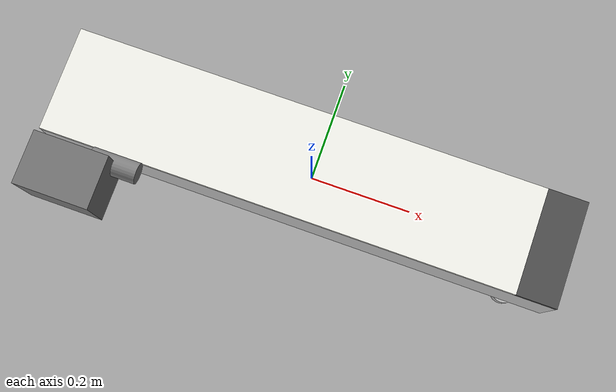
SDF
<?xml version="1.0" ?>
<sdf version="1.8">
  <model name="mini_mover_conveyor">
    <static>true</static>

    <link name="base">

      <!-- Main conveyor body -->
      <visual name="frame">
        <pose>0 0 0.06 0 0 0</pose>
        <geometry>
          <box>
            <size>0.9906 0.2032 0.12</size>
          </box>
        </geometry>
        <material>
          <ambient>0.72 0.72 0.72 1</ambient>
          <diffuse>0.72 0.72 0.72 1</diffuse>
        </material>
      </visual>

      <!-- Conveyor belt surface -->
      <visual name="belt">
        <pose>-0.0381 0 0.125 0 0 0</pose>
        <geometry>
          <box>
            <size>0.9144 0.2032 0.01</size>
          </box>
        </geometry>
        <material>
          <ambient>0.95 0.95 0.92 1</ambient>
          <diffuse>0.95 0.95 0.92 1</diffuse>
        </material>
      </visual>

      <!-- Front metal extension plate -->
      <visual name="front_extension">
        <pose>0.4572 0 0.125 0 0 0</pose>
        <geometry>
          <box>
            <size>0.0762 0.2032 0.01</size>
          </box>
        </geometry>
        <material>
          <ambient>0.30 0.30 0.30 1</ambient>
          <diffuse>0.30 0.30 0.30 1</diffuse>
        </material>
      </visual>

      <!-- Side-mounted motor box -->
      <visual name="motor_box">
        <pose>-0.40 -0.17 0.16 0 0 0</pose>
        <geometry>
          <box>
            <size>0.14 0.10 0.12</size>
          </box>
        </geometry>
        <material>
          <ambient>0.45 0.45 0.45 1</ambient>
          <diffuse>0.45 0.45 0.45 1</diffuse>
        </material>
      </visual>

      <!-- Motor cylinder connecting to conveyor side -->
      <visual name="motor_coupler">
        <pose>-0.33 -0.125 0.16 0 1.5708 0</pose>
        <geometry>
          <cylinder>
            <radius>0.02</radius>
            <length>0.09</length>
          </cylinder>
        </geometry>
        <material>
          <ambient>0.50 0.50 0.50 1</ambient>
          <diffuse>0.50 0.50 0.50 1</diffuse>
        </material>
      </visual>

      <!-- Four corner feet -->
      <visual name="foot_front_left">
        <pose>0.42 0.08 -0.02 0 0 0</pose>
        <geometry>
          <cylinder>
            <radius>0.0254</radius>
            <length>0.02</length>
          </cylinder>
        </geometry>
        <material>
          <ambient>0.7 0.7 0.7 1</ambient>
          <diffuse>0.7 0.7 0.7 1</diffuse>
        </material>
      </visual>

      <visual name="foot_front_right">
        <pose>0.42 -0.08 -0.02 0 0 0</pose>
        <geometry>
          <cylinder>
            <radius>0.0254</radius>
            <length>0.02</length>
          </cylinder>
        </geometry>
        <material>
          <ambient>0.7 0.7 0.7 1</ambient>
          <diffuse>0.7 0.7 0.7 1</diffuse>
        </material>
      </visual>

      <visual name="foot_back_left">
        <pose>-0.42 0.08 -0.02 0 0 0</pose>
        <geometry>
          <cylinder>
            <radius>0.0254</radius>
            <length>0.02</length>
          </cylinder>
        </geometry>
        <material>
          <ambient>0.7 0.7 0.7 1</ambient>
          <diffuse>0.7 0.7 0.7 1</diffuse>
        </material>
      </visual>

      <visual name="foot_back_right">
        <pose>-0.42 -0.08 -0.02 0 0 0</pose>
        <geometry>
          <cylinder>
            <radius>0.0254</radius>
            <length>0.02</length>
          </cylinder>
        </geometry>
        <material>
          <ambient>0.7 0.7 0.7 1</ambient>
          <diffuse>0.7 0.7 0.7 1</diffuse>
        </material>
      </visual>

    </link>
  </model>
</sdf>
